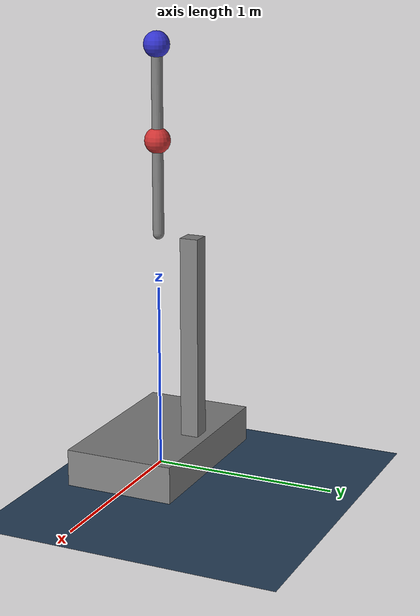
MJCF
<mujoco model="scene">
    <include file="cart_pendulum1.xml" />
    <include file="cart_pendulum2.xml" />
    <option timestep="0.01" gravity="0 0 -9.81" />

    <default>
        <geom friction="0 0 0"/>
    </default>

    <asset>
        <texture type="skybox" builtin="gradient" rgb1="0.3 0.5 0.7" rgb2="0 0 0" width="512" height="3072"/>
        <texture type="2d" name="groundplane" builtin="checker" mark="edge" rgb1="0.2 0.3 0.4" rgb2="0.1 0.2 0.3"
        markrgb="0.8 0.8 0.8" width="300" height="300"/>
        <material name="groundplane" texture="groundplane" texuniform="true" texrepeat="5 5" reflectance="0.2"/>
    </asset>

    <worldbody>
        <light pos="0 0 3" dir="0 0 -1" directional="true" />
        <geom name="floor" type="plane" material="groundplane" size="10 10 0.1" friction="0 0 0"/>
    </worldbody>
</mujoco>

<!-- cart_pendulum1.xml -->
<mujoco model="cart_pendulum1">
    <worldbody>
        <body name="cart_1" pos="0 0 0.1">
            <joint name="slider_1" type="slide" axis="1 0 0" />
            <geom name="cart_geom_1" type="box" size="0.5 0.3 0.1" mass="1.0" />
            <body name="stand_1" pos="0 0.2 0.6">
                <geom name="stand_geom_1" type="box" size="0.05 0.05 0.6" mass="0" />
                <body name="arm1_1" pos="0 -0.2 0.6">
                    <joint name="hinge1_1" type="hinge" axis="0 1 0"/>
                    <geom name="arm1_geom_1" type="capsule" fromto="0 0 0 0 0 0.5" size="0.03" mass="0" />
                    <body name="mass1_1" pos="0 0 0.5">
                        <geom name="mass1_geom_1" type="sphere" size="0.07" mass="0.1" rgba="0.8 0.2 0.2 1"/>
                    </body>
                    <body name="arm2_1" pos="0 0 0.5">
                        <joint name="hinge2_1" type="hinge" axis="0 1 0"/>
                        <geom name="arm2_geom_1" type="capsule" fromto="0 0 0 0 0 0.5" size="0.03" mass="0" />
                        <body name="mass2_1" pos="0 0 0.5">
                            <geom name="mass2_geom_1" type="sphere" size="0.07" mass="0.1" rgba="0.2 0.2 0.8 1"/>
                        </body>
                    </body>
                </body>
            </body>
        </body>
    </worldbody>
</mujoco>

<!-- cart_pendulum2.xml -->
<mujoco model="cart_pendulum2">
    <worldbody>
        <body name="cart_2" pos="0 0 0.1">
            <joint name="slider_2" type="slide" axis="1 0 0" />
            <geom name="cart_geom_2" type="box" size="0.5 0.3 0.1" mass="1.0" />
            <body name="stand_2" pos="0 0.2 0.6">
                <geom name="stand_geom_2" type="box" size="0.05 0.05 0.6" mass="0" />
                <body name="arm1_2" pos="0 -0.2 0.6">
                    <joint name="hinge1_2" type="hinge" axis="0 1 0"/>
                    <geom name="arm1_geom_2" type="capsule" fromto="0 0 0 0 0 0.5" size="0.03" mass="0" />
                    <body name="mass1_2" pos="0 0 0.5">
                        <geom name="mass1_geom_2" type="sphere" size="0.07" mass="0.1" rgba="0.8 0.2 0.2 1"/>
                    </body>
                    <body name="arm2_2" pos="0 0 0.5">
                        <joint name="hinge2_2" type="hinge" axis="0 1 0"/>
                        <geom name="arm2_geom_2" type="capsule" fromto="0 0 0 0 0 0.5" size="0.03" mass="0" />
                        <body name="mass2_2" pos="0 0 0.5">
                            <geom name="mass2_geom_2" type="sphere" size="0.07" mass="0.1" rgba="0.2 0.2 0.8 1"/>
                        </body>
                    </body>
                </body>
            </body>
        </body>
    </worldbody>
</mujoco>
